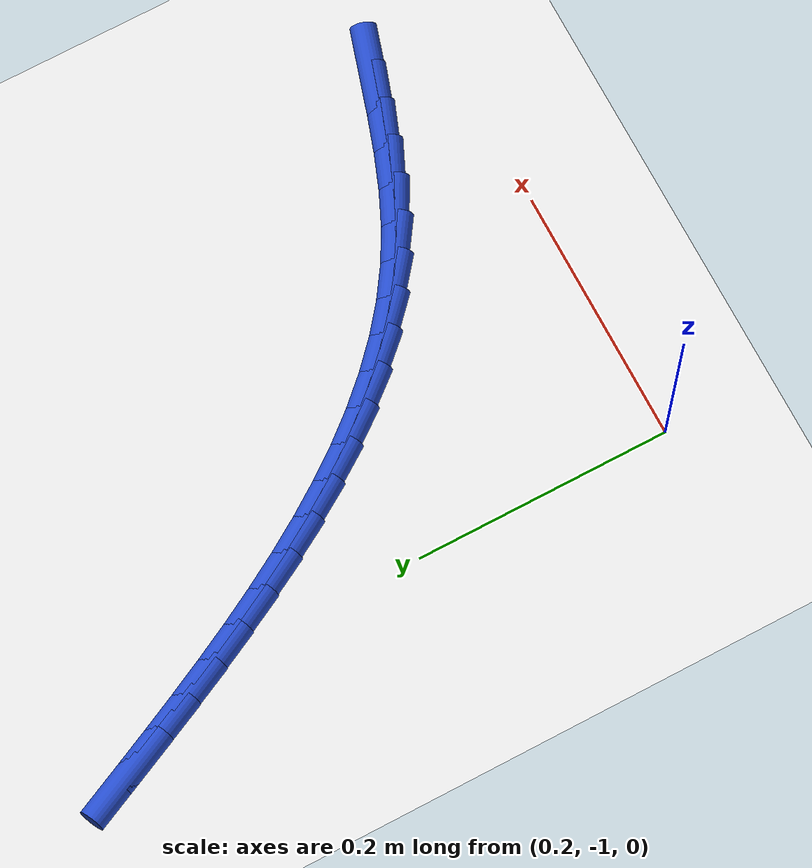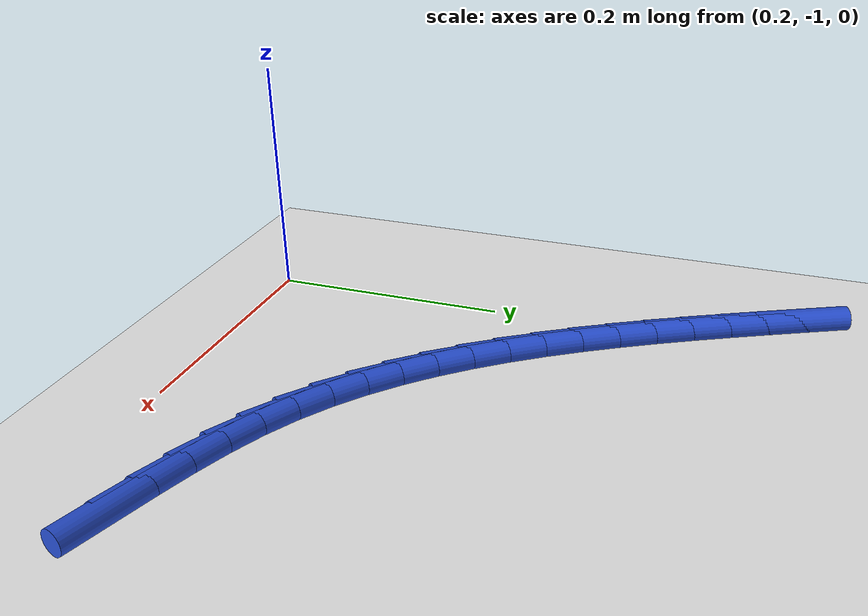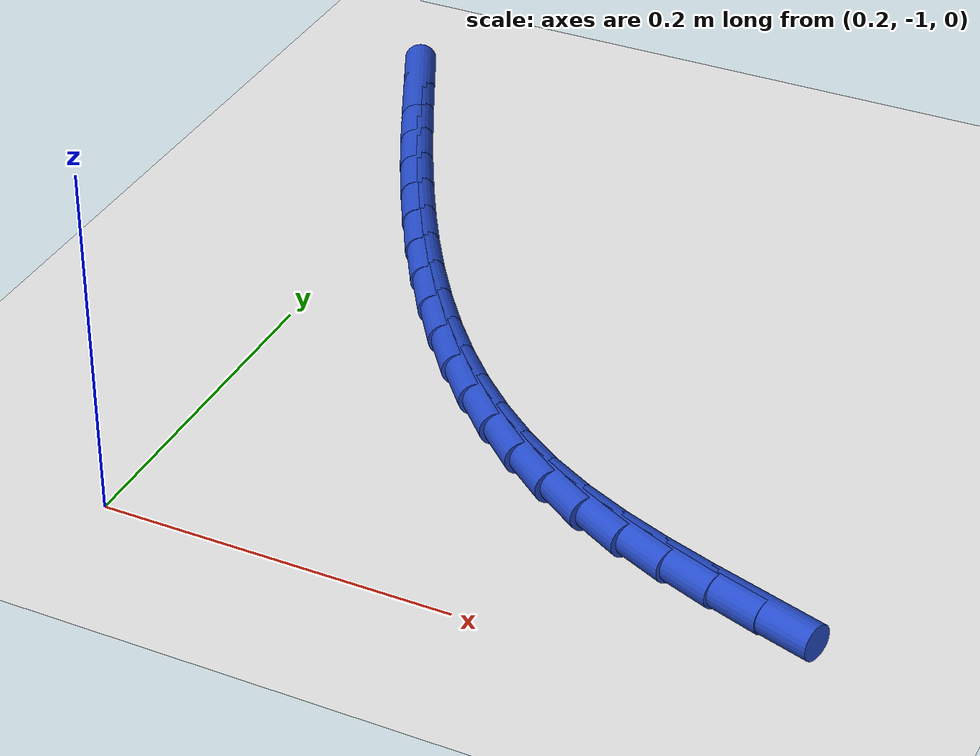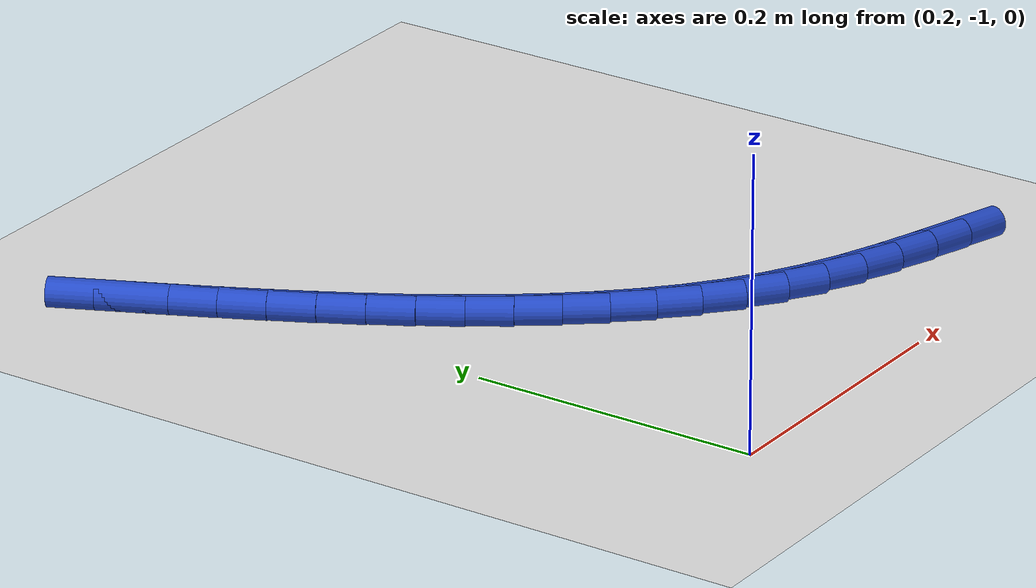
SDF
<sdf version="1.6">
 <world name="default">
  <model name="ground_plane">
   <static>1</static>
   <link name="link">
    <collision name="collision">
     <geometry><plane><normal>0 0 1</normal><size>100 100</size></plane></geometry>
     <surface><friction><ode><mu>100</mu><mu2>50</mu2></ode></friction></surface>
    </collision>
    <visual name="visual">
     <cast_shadows>0</cast_shadows>
     <geometry><plane><normal>0 0 1</normal><size>100 100</size></plane></geometry>
     <material>
      <script><uri>file://media/materials/scripts/gazebo.material</uri><name>Gazebo/WhiteGlow</name></script>
     </material>
    </visual>
   </link>
  </model>
  <model name="line">
   <link name="link_202">
    <pose>0.5355373428613988 -0.9415155216952482 0.01 0 1.57 -0.3015116447601971</pose>
    <collision name="collision">
     <geometry><cylinder><radius>0.01</radius><length>0.08</length></cylinder></geometry>
    </collision>
    <visual name="visual">
     <material>
      <script><name>Gazebo/Blue</name><uri>file://media/materials/scripts/gazebo.material</uri></script>
     </material>
     <geometry><cylinder><radius>0.01</radius><length>0.08</length></cylinder></geometry>
    </visual>
   </link>
   <link name="link_203">
    <pose>0.506764234234752 -0.9325672771703742 0.01 0 1.57 -0.32577088187788245</pose>
    <collision name="collision">
     <geometry><cylinder><radius>0.01</radius><length>0.08</length></cylinder></geometry>
    </collision>
    <visual name="visual">
     <material>
      <script><name>Gazebo/Blue</name><uri>file://media/materials/scripts/gazebo.material</uri></script>
     </material>
     <geometry><cylinder><radius>0.01</radius><length>0.08</length></cylinder></geometry>
    </visual>
   </link>
   <link name="link_204">
    <pose>0.4785229808352026 -0.9230272015266866 0.01 0 1.57 -0.36840505577572114</pose>
    <collision name="collision">
     <geometry><cylinder><radius>0.01</radius><length>0.08</length></cylinder></geometry>
    </collision>
    <visual name="visual">
     <material>
      <script><name>Gazebo/Blue</name><uri>file://media/materials/scripts/gazebo.material</uri></script>
     </material>
     <geometry><cylinder><radius>0.01</radius><length>0.08</length></cylinder></geometry>
    </visual>
   </link>
   <link name="link_205">
    <pose>0.45107786654539306 -0.912432580241211 0.01 0 1.57 -0.43035402365738423</pose>
    <collision name="collision">
     <geometry><cylinder><radius>0.01</radius><length>0.08</length></cylinder></geometry>
    </collision>
    <visual name="visual">
     <material>
      <script><name>Gazebo/Blue</name><uri>file://media/materials/scripts/gazebo.material</uri></script>
     </material>
     <geometry><cylinder><radius>0.01</radius><length>0.08</length></cylinder></geometry>
    </visual>
   </link>
   <link name="link_206">
    <pose>0.4246931752479656 -0.9003206987909714 0.01 0 1.57 -0.5113060318761068</pose>
    <collision name="collision">
     <geometry><cylinder><radius>0.01</radius><length>0.08</length></cylinder></geometry>
    </collision>
    <visual name="visual">
     <material>
      <script><name>Gazebo/Blue</name><uri>file://media/materials/scripts/gazebo.material</uri></script>
     </material>
     <geometry><cylinder><radius>0.01</radius><length>0.08</length></cylinder></geometry>
    </visual>
   </link>
   <link name="link_207">
    <pose>0.3996198123225925 -0.88625267081089 0.01 0 1.57 -0.5973940614498774</pose>
    <collision name="collision">
     <geometry><cylinder><radius>0.01</radius><length>0.08</length></cylinder></geometry>
    </collision>
    <visual name="visual">
     <material>
      <script><name>Gazebo/Blue</name><uri>file://media/materials/scripts/gazebo.material</uri></script>
     </material>
     <geometry><cylinder><radius>0.01</radius><length>0.08</length></cylinder></geometry>
    </visual>
   </link>
   <link name="link_208">
    <pose>0.3759185402306543 -0.870128269312798 0.01 0 1.57 -0.677491102341918</pose>
    <collision name="collision">
     <geometry><cylinder><radius>0.01</radius><length>0.08</length></cylinder></geometry>
    </collision>
    <visual name="visual">
     <material>
      <script><name>Gazebo/Blue</name><uri>file://media/materials/scripts/gazebo.material</uri></script>
     </material>
     <geometry><cylinder><radius>0.01</radius><length>0.08</length></cylinder></geometry>
    </visual>
   </link>
   <link name="link_209">
    <pose>0.35350871940640094 -0.8520991153543738 0.01 0 1.57 -0.750611844164862</pose>
    <collision name="collision">
     <geometry><cylinder><radius>0.01</radius><length>0.08</length></cylinder></geometry>
    </collision>
    <visual name="visual">
     <material>
      <script><name>Gazebo/Blue</name><uri>file://media/materials/scripts/gazebo.material</uri></script>
     </material>
     <geometry><cylinder><radius>0.01</radius><length>0.08</length></cylinder></geometry>
    </visual>
   </link>
   <link name="link_210">
    <pose>0.3323063487935576 -0.8323228170702568 0.01 0 1.57 -0.8164394766180485</pose>
    <collision name="collision">
     <geometry><cylinder><radius>0.01</radius><length>0.08</length></cylinder></geometry>
    </collision>
    <visual name="visual">
     <material>
      <script><name>Gazebo/Blue</name><uri>file://media/materials/scripts/gazebo.material</uri></script>
     </material>
     <geometry><cylinder><radius>0.01</radius><length>0.08</length></cylinder></geometry>
    </visual>
   </link>
   <link name="link_211">
    <pose>0.31222742733585024 -0.8109569825950877 0.01 0 1.57 -0.8749888929722737</pose>
    <collision name="collision">
     <geometry><cylinder><radius>0.01</radius><length>0.08</length></cylinder></geometry>
    </collision>
    <visual name="visual">
     <material>
      <script><name>Gazebo/Blue</name><uri>file://media/materials/scripts/gazebo.material</uri></script>
     </material>
     <geometry><cylinder><radius>0.01</radius><length>0.08</length></cylinder></geometry>
    </visual>
   </link>
   <link name="link_212">
    <pose>0.2931879539770049 -0.7881592200635072 0.01 0 1.57 -0.9264990339030509</pose>
    <collision name="collision">
     <geometry><cylinder><radius>0.01</radius><length>0.08</length></cylinder></geometry>
    </collision>
    <visual name="visual">
     <material>
      <script><name>Gazebo/Blue</name><uri>file://media/materials/scripts/gazebo.material</uri></script>
     </material>
     <geometry><cylinder><radius>0.01</radius><length>0.08</length></cylinder></geometry>
    </visual>
   </link>
   <link name="link_213">
    <pose>0.2751039276607475 -0.7640871376101552 0.01 0 1.57 -0.9713374117964468</pose>
    <collision name="collision">
     <geometry><cylinder><radius>0.01</radius><length>0.08</length></cylinder></geometry>
    </collision>
    <visual name="visual">
     <material>
      <script><name>Gazebo/Blue</name><uri>file://media/materials/scripts/gazebo.material</uri></script>
     </material>
     <geometry><cylinder><radius>0.01</radius><length>0.08</length></cylinder></geometry>
    </visual>
   </link>
   <link name="link_214">
    <pose>0.25789134733080393 -0.7388983433696722 0.01 0 1.57 -1.0099259078654172</pose>
    <collision name="collision">
     <geometry><cylinder><radius>0.01</radius><length>0.08</length></cylinder></geometry>
    </collision>
    <visual name="visual">
     <material>
      <script><name>Gazebo/Blue</name><uri>file://media/materials/scripts/gazebo.material</uri></script>
     </material>
     <geometry><cylinder><radius>0.01</radius><length>0.08</length></cylinder></geometry>
    </visual>
   </link>
   <link name="link_215">
    <pose>0.24146621193089987 -0.7127504454766981 0.01 0 1.57 -1.042688322894153</pose>
    <collision name="collision">
     <geometry><cylinder><radius>0.01</radius><length>0.08</length></cylinder></geometry>
    </collision>
    <visual name="visual">
     <material>
      <script><name>Gazebo/Blue</name><uri>file://media/materials/scripts/gazebo.material</uri></script>
     </material>
     <geometry><cylinder><radius>0.01</radius><length>0.08</length></cylinder></geometry>
    </visual>
   </link>
   <link name="link_216">
    <pose>0.22574452040476192 -0.6858010520658744 0.01 0 1.57 -1.0700159743122553</pose>
    <collision name="collision">
     <geometry><cylinder><radius>0.01</radius><length>0.08</length></cylinder></geometry>
    </collision>
    <visual name="visual">
     <material>
      <script><name>Gazebo/Blue</name><uri>file://media/materials/scripts/gazebo.material</uri></script>
     </material>
     <geometry><cylinder><radius>0.01</radius><length>0.08</length></cylinder></geometry>
    </visual>
   </link>
   <link name="link_217">
    <pose>0.21064227169611585 -0.658207771271841 0.01 0 1.57 -1.0922464624514623</pose>
    <collision name="collision">
     <geometry><cylinder><radius>0.01</radius><length>0.08</length></cylinder></geometry>
    </collision>
    <visual name="visual">
     <material>
      <script><name>Gazebo/Blue</name><uri>file://media/materials/scripts/gazebo.material</uri></script>
     </material>
     <geometry><cylinder><radius>0.01</radius><length>0.08</length></cylinder></geometry>
    </visual>
   </link>
   <link name="link_218">
    <pose>0.19607546474868742 -0.6301282112292382 0.01 0 1.57 -1.1096510965524489</pose>
    <collision name="collision">
     <geometry><cylinder><radius>0.01</radius><length>0.08</length></cylinder></geometry>
    </collision>
    <visual name="visual">
     <material>
      <script><name>Gazebo/Blue</name><uri>file://media/materials/scripts/gazebo.material</uri></script>
     </material>
     <geometry><cylinder><radius>0.01</radius><length>0.08</length></cylinder></geometry>
    </visual>
   </link>
   <link name="link_219">
    <pose>0.18196009850620265 -0.6017199800727067 0.01 0 1.57 -1.1224273793343669</pose>
    <collision name="collision">
     <geometry><cylinder><radius>0.01</radius><length>0.08</length></cylinder></geometry>
    </collision>
    <visual name="visual">
     <material>
      <script><name>Gazebo/Blue</name><uri>file://media/materials/scripts/gazebo.material</uri></script>
     </material>
     <geometry><cylinder><radius>0.01</radius><length>0.08</length></cylinder></geometry>
    </visual>
   </link>
   <link name="link_220">
    <pose>0.16821217191238752 -0.5731406859368863 0.01 0 1.57 -1.130693881920624</pose>
    <collision name="collision">
     <geometry><cylinder><radius>0.01</radius><length>0.08</length></cylinder></geometry>
    </collision>
    <visual name="visual">
     <material>
      <script><name>Gazebo/Blue</name><uri>file://media/materials/scripts/gazebo.material</uri></script>
     </material>
     <geometry><cylinder><radius>0.01</radius><length>0.08</length></cylinder></geometry>
    </visual>
   </link>
   <link name="link_221">
    <pose>0.15474768391096796 -0.5445479369564178 0.01 0 1.57 -1.1344855985055142</pose>
    <collision name="collision">
     <geometry><cylinder><radius>0.01</radius><length>0.08</length></cylinder></geometry>
    </collision>
    <visual name="visual">
     <material>
      <script><name>Gazebo/Blue</name><uri>file://media/materials/scripts/gazebo.material</uri></script>
     </material>
     <geometry><cylinder><radius>0.01</radius><length>0.08</length></cylinder></geometry>
    </visual>
   </link>
  </model>
 </world>
</sdf>
